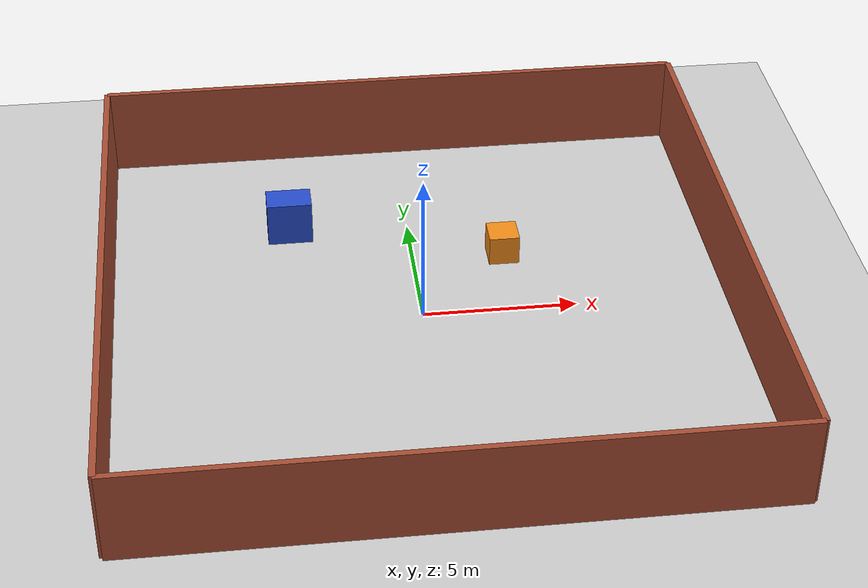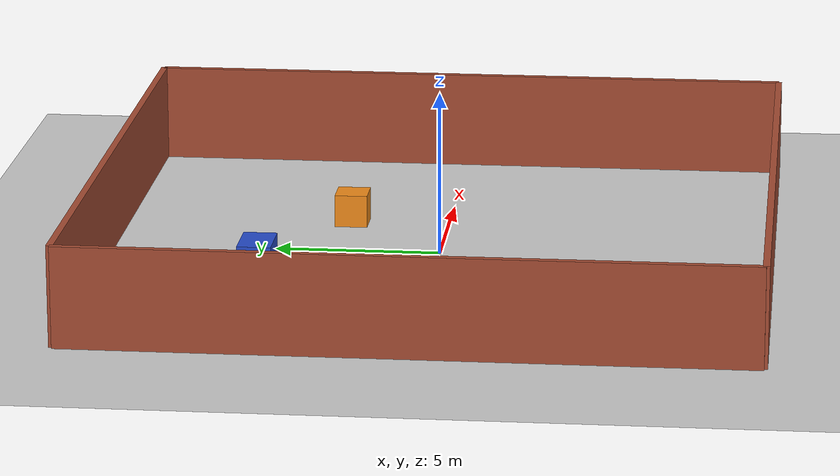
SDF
<sdf version="1.6">
 <world name="indoor_avoidance">
  <physics type="ode"><max_step_size>0.01</max_step_size><real_time_factor>1</real_time_factor></physics>
  <scene><ambient>0.4 0.4 0.4 1</ambient><background>0.7 0.7 0.7 1</background><shadows>true</shadows></scene>
  <light type="directional" name="sun">
   <pose>0 0 10 0 0 0</pose>
   <diffuse>0.8 0.8 0.8 1</diffuse>
   <specular>0.2 0.2 0.2 1</specular>
   <attenuation><range>1000</range></attenuation>
  </light>
  <model name="ground_plane">
   <static>true</static>
   <link name="link">
    <collision name="collision"><geometry><plane><normal>0 0 1</normal></plane></geometry></collision>
    <visual name="visual">
     <geometry><plane><normal>0 0 1</normal><size>20 20</size></plane></geometry>
     <material>
      <script><uri>file://media/materials/scripts/gazebo.material</uri><name>Gazebo/Grey</name></script>
     </material>
    </visual>
   </link>
  </model>
  <model name="wall_n">
   <static>true</static>
   <pose>0 10 1.5 0 0 0</pose>
   <link name="link">
    <collision name="collision"><geometry><box><size>20 0.2 3</size></box></geometry></collision>
    <visual name="visual">
     <geometry><box><size>20 0.2 3</size></box></geometry>
     <material><script><name>Gazebo/Bricks</name></script></material>
    </visual>
   </link>
  </model>
  <model name="wall_s">
   <static>true</static>
   <pose>0 -10 1.5 0 0 0</pose>
   <link name="link">
    <collision name="collision"><geometry><box><size>20 0.2 3</size></box></geometry></collision>
    <visual name="visual">
     <geometry><box><size>20 0.2 3</size></box></geometry>
     <material><script><name>Gazebo/Bricks</name></script></material>
    </visual>
   </link>
  </model>
  <model name="wall_e">
   <static>true</static>
   <pose>10 0 1.5 0 0 0</pose>
   <link name="link">
    <collision name="collision"><geometry><box><size>0.2 20 3</size></box></geometry></collision>
    <visual name="visual">
     <geometry><box><size>0.2 20 3</size></box></geometry>
     <material><script><name>Gazebo/Bricks</name></script></material>
    </visual>
   </link>
  </model>
  <model name="wall_w">
   <static>true</static>
   <pose>-10 0 1.5 0 0 0</pose>
   <link name="link">
    <collision name="collision"><geometry><box><size>0.2 20 3</size></box></geometry></collision>
    <visual name="visual">
     <geometry><box><size>0.2 20 3</size></box></geometry>
     <material><script><name>Gazebo/Bricks</name></script></material>
    </visual>
   </link>
  </model>
  <model name="box1">
   <pose>3 3 0.5 0 0 0</pose>
   <link name="link">
    <collision name="collision"><geometry><box><size>1 1 1</size></box></geometry></collision>
    <visual name="visual">
     <geometry><box><size>1 1 1</size></box></geometry>
     <material><script><name>Gazebo/Orange</name></script></material>
    </visual>
   </link>
  </model>
  <model name="box2">
   <pose>-4 5 0.75 0 0 0</pose>
   <link name="link">
    <collision name="collision"><geometry><box><size>1.5 1 1.5</size></box></geometry></collision>
    <visual name="visual">
     <geometry><box><size>1.5 1 1.5</size></box></geometry>
     <material><script><name>Gazebo/Blue</name></script></material>
    </visual>
   </link>
  </model>
  <plugin name="gazebo_ros_factory" filename="libgazebo_ros_factory.so"/>
 </world>
</sdf>
